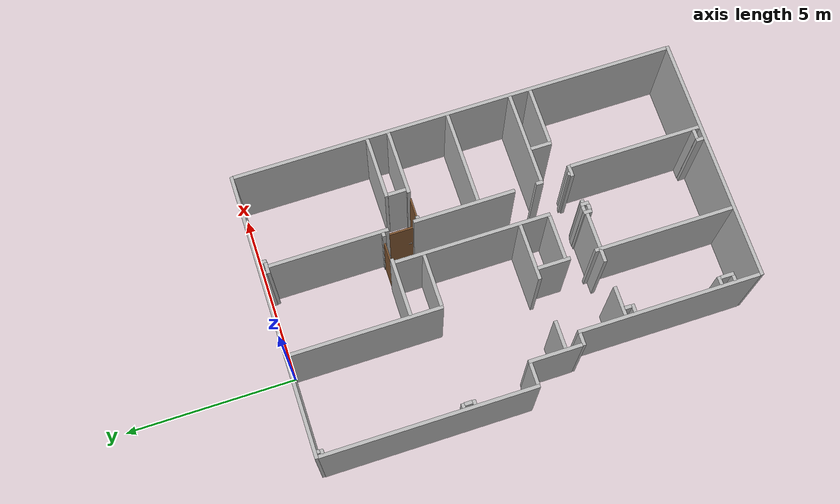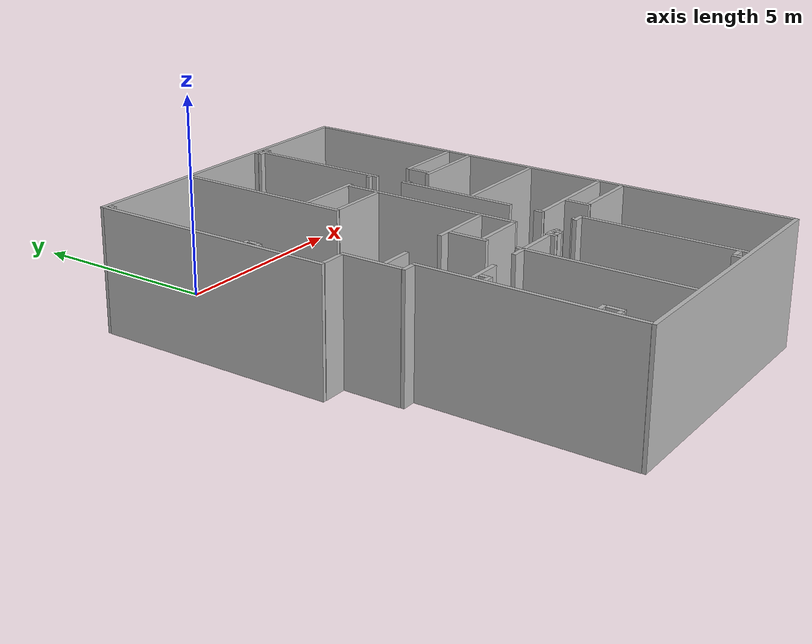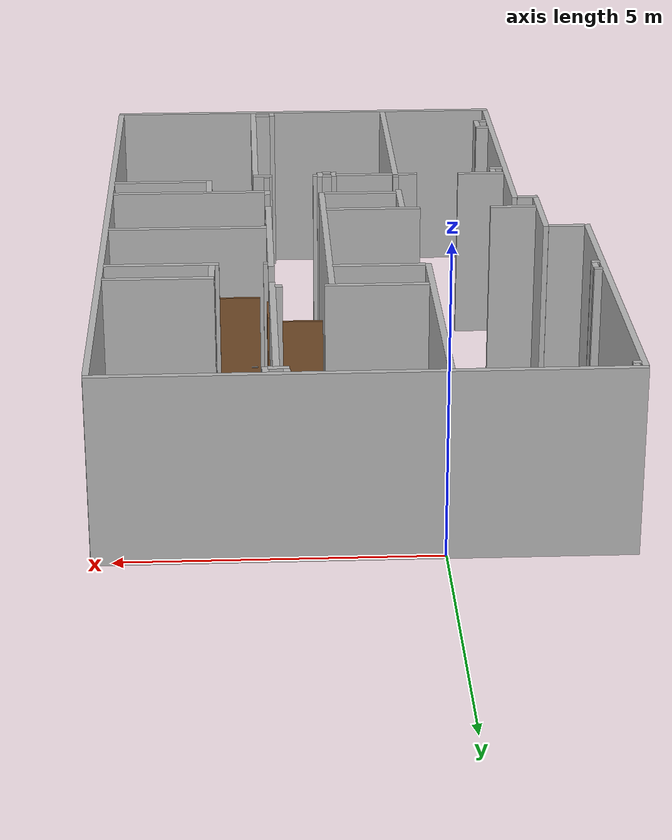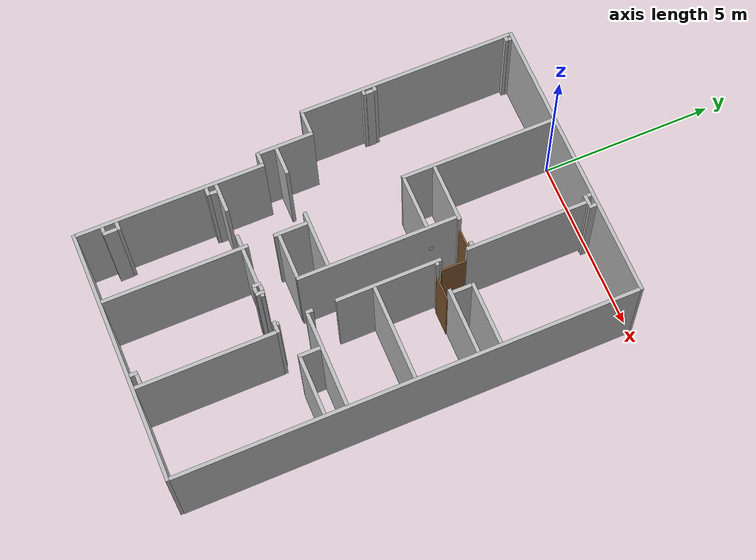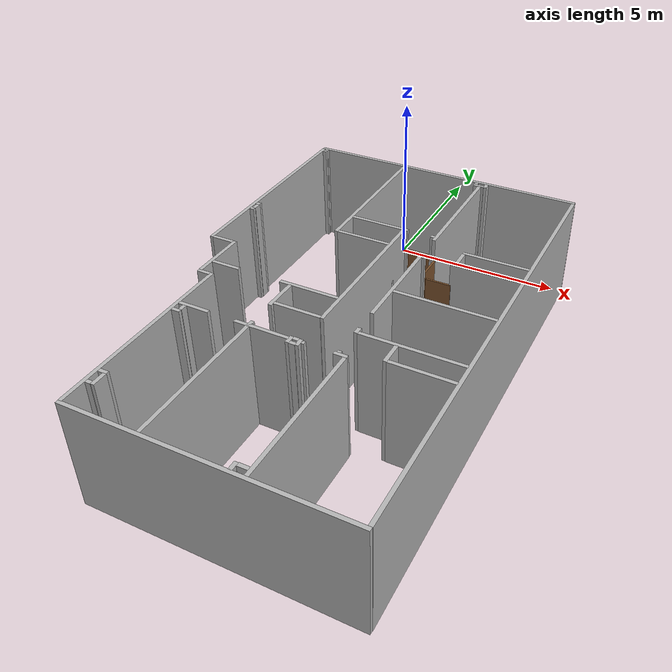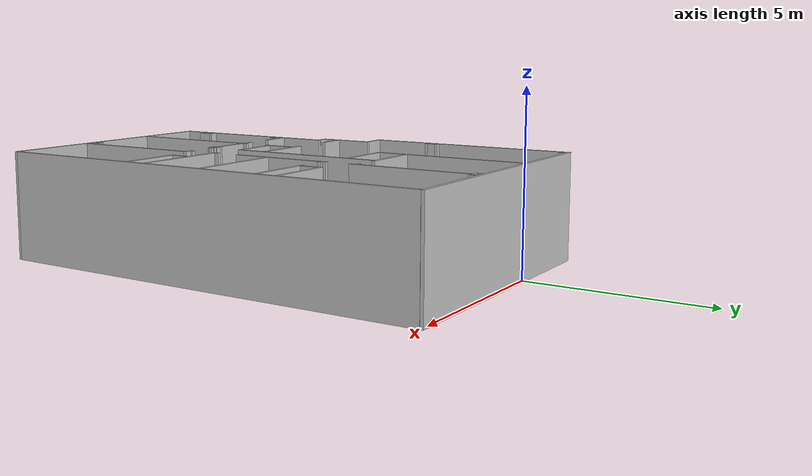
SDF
<sdf version='1.6'>
  <model name='complete_mp_model'>
    <link name='building_footprint'>
      <pose frame=''>0 0 0 0 -0 0</pose>
      <inertial>
        <pose frame=''>1.12721 -5.42171 0.338508 0 -0 0</pose>
        <mass>244</mass>
        <inertia>
          <ixx>1142.81</ixx>
          <ixy>-243.459</ixy>
          <ixz>23.0829</ixz>
          <iyy>742.682</iyy>
          <iyz>104.008</iyz>
          <izz>1644.27</izz>
        </inertia>
      </inertial>
      <collision name='building_footprint_fixed_joint_lump__Wall_0_Collision_collision'>
        <pose frame=''>-0.032085 -2.20086 1.524 0 0 -1.5708</pose>
        <geometry>
          <box>
            <size>4.36829 0.1015 3.048</size>
          </box>
        </geometry>
      </collision>
      <collision name='building_footprint_fixed_joint_lump__Wall_10_Collision_collision_1'>
        <pose frame=''>1.73042 -12.8567 1.524 0 -0 3.14159</pose>
        <geometry>
          <box>
            <size>7.155 0.1015 3.048</size>
          </box>
        </geometry>
      </collision>
      <collision name='building_footprint_fixed_joint_lump__Wall_11_Collision_collision_2'>
        <pose frame=''>-2.86708 -3.07444 1.524 0 0 -1.5708</pose>
        <geometry>
          <box>
            <size>6.11546 0.1015 3.048</size>
          </box>
        </geometry>
      </collision>
      <collision name='building_footprint_fixed_joint_lump__Wall_12_Collision_collision_3'>
        <pose frame=''>2.67107 -0.121714 1.524 0 0 -1.5708</pose>
        <geometry>
          <box>
            <size>0.21 0.1015 3.048</size>
          </box>
        </geometry>
      </collision>
      <collision name='building_footprint_fixed_joint_lump__Wall_13_Collision_collision_4'>
        <pose frame=''>-2.02697 -7.61717 1.524 0 -0 3.14159</pose>
        <geometry>
          <box>
            <size>0.36 0.1015 3.048</size>
          </box>
        </geometry>
      </collision>
      <collision name='building_footprint_fixed_joint_lump__Wall_14_Collision_collision_5'>
        <pose frame=''>-2.16697 -6.81467 1.524 0 -0 1.5708</pose>
        <geometry>
          <box>
            <size>1.525 0.1015 3.048</size>
          </box>
        </geometry>
      </collision>
      <collision name='building_footprint_fixed_joint_lump__Wall_15_Collision_collision_6'>
        <pose frame=''>-2.51703 -6.09217 1.524 0 -0 3.14159</pose>
        <geometry>
          <box>
            <size>0.620118 0.1015 3.048</size>
          </box>
        </geometry>
      </collision>
      <collision name='building_footprint_fixed_joint_lump__Wall_16_Collision_collision_7'>
        <pose frame=''>-1.72697 -7.10717 1.524 0 -0 0</pose>
        <geometry>
          <box>
            <size>0.8 0.1015 3.048</size>
          </box>
        </geometry>
      </collision>
      <collision name='building_footprint_fixed_joint_lump__Wall_17_Collision_collision_8'>
        <pose frame=''>0.708089 -7.10814 1.524 0 -0 0</pose>
        <geometry>
          <box>
            <size>1.6314 0.1015 3.048</size>
          </box>
        </geometry>
      </collision>
      <collision name='building_footprint_fixed_joint_lump__Wall_18_Collision_collision_9'>
        <pose frame=''>0.203786 -7.61814 1.524 0 0 -1.5708</pose>
        <geometry>
          <box>
            <size>0.94 0.1015 3.048</size>
          </box>
        </geometry>
      </collision>
      <collision name='building_footprint_fixed_joint_lump__Wall_19_Collision_collision_10'>
        <pose frame=''>0.883786 -7.95418 1.524 0 -0 3.14159</pose>
        <geometry>
          <box>
            <size>1.28 0.1015 3.048</size>
          </box>
        </geometry>
      </collision>
      <collision name='building_footprint_fixed_joint_lump__Wall_1_Collision_collision_11'>
        <pose frame=''>-1.80697 -10.1969 1.524 0 -0 1.5708</pose>
        <geometry>
          <box>
            <size>5.23954 0.1015 3.048</size>
          </box>
        </geometry>
      </collision>
      <collision name='building_footprint_fixed_joint_lump__Wall_20_Collision_collision_12'>
        <pose frame=''>2.51258 -5.82869 1.524 0 0 -1.5708</pose>
        <geometry>
          <box>
            <size>2.94 0.1015 3.048</size>
          </box>
        </geometry>
      </collision>
      <collision name='building_footprint_fixed_joint_lump__Wall_21_Collision_collision_13'>
        <pose frame=''>3.89025 -6.23869 1.524 0 -0 3.14159</pose>
        <geometry>
          <box>
            <size>2.67534 0.1015 3.048</size>
          </box>
        </geometry>
      </collision>
      <collision name='building_footprint_fixed_joint_lump__Wall_22_Collision_collision_14'>
        <pose frame=''>2.59508 -4.50369 1.524 0 -0 0</pose>
        <geometry>
          <box>
            <size>0.085 0.1015 3.048</size>
          </box>
        </geometry>
      </collision>
      <collision name='building_footprint_fixed_joint_lump__Wall_23_Collision_collision_15'>
        <pose frame=''>4.29108 -4.50455 1.524 0 -0 0</pose>
        <geometry>
          <box>
            <size>1.87367 0.1015 3.048</size>
          </box>
        </geometry>
      </collision>
      <collision name='building_footprint_fixed_joint_lump__Wall_24_Collision_collision_16'>
        <pose frame=''>4.33025 -3.885 1.524 0 -0 3.14159</pose>
        <geometry>
          <box>
            <size>1.79534 0.1015 3.048</size>
          </box>
        </geometry>
      </collision>
      <collision name='building_footprint_fixed_joint_lump__Wall_25_Collision_collision_17'>
        <pose frame=''>3.47258 -4.19478 1.524 0 0 -1.5708</pose>
        <geometry>
          <box>
            <size>0.539551 0.1015 3.048</size>
          </box>
        </geometry>
      </collision>
      <collision name='building_footprint_fixed_joint_lump__Wall_26_Collision_collision_18'>
        <pose frame=''>3.89302 -8.08548 1.524 0 -0 0</pose>
        <geometry>
          <box>
            <size>2.66978 0.1015 3.048</size>
          </box>
        </geometry>
      </collision>
      <collision name='building_footprint_fixed_joint_lump__Wall_27_Collision_collision_19'>
        <pose frame=''>2.51813 -8.02094 1.524 0 0 -1.5708</pose>
        <geometry>
          <box>
            <size>0.209072 0.1015 3.048</size>
          </box>
        </geometry>
      </collision>
      <collision name='building_footprint_fixed_joint_lump__Wall_28_Collision_collision_20'>
        <pose frame=''>3.54313 -8.42798 1.524 0 0 -1.5708</pose>
        <geometry>
          <box>
            <size>0.605 0.1015 3.048</size>
          </box>
        </geometry>
      </collision>
      <collision name='building_footprint_fixed_joint_lump__Wall_29_Collision_collision_21'>
        <pose frame=''>4.40552 -8.69048 1.524 0 -0 0</pose>
        <geometry>
          <box>
            <size>1.64478 0.1015 3.048</size>
          </box>
        </geometry>
      </collision>
      <collision name='building_footprint_fixed_joint_lump__Wall_2_Collision_collision_22'>
        <pose frame=''>0.765851 -4.345 1.524 0 -0 0</pose>
        <geometry>
          <box>
            <size>1.51587 0.1015 3.048</size>
          </box>
        </geometry>
      </collision>
      <collision name='building_footprint_fixed_joint_lump__Wall_30_Collision_collision_23'>
        <pose frame=''>-2.73708 -0.066714 1.524 0 0 -1.5708</pose>
        <geometry>
          <box>
            <size>0.1 0.1015 3.048</size>
          </box>
        </geometry>
      </collision>
      <collision name='building_footprint_fixed_joint_lump__Wall_31_Collision_collision_24'>
        <pose frame=''>-2.76208 -0.156714 1.524 0 -0 3.14159</pose>
        <geometry>
          <box>
            <size>0.13 0.1015 3.048</size>
          </box>
        </geometry>
      </collision>
      <collision name='building_footprint_fixed_joint_lump__Wall_32_Collision_collision_25'>
        <pose frame=''>-2.75708 -4.035 1.524 0 -0 0</pose>
        <geometry>
          <box>
            <size>0.14 0.1015 3.048</size>
          </box>
        </geometry>
      </collision>
      <collision name='building_footprint_fixed_joint_lump__Wall_33_Collision_collision_26'>
        <pose frame=''>-2.75708 -4.345 1.524 0 -0 0</pose>
        <geometry>
          <box>
            <size>0.14 0.1015 3.048</size>
          </box>
        </geometry>
      </collision>
      <collision name='building_footprint_fixed_joint_lump__Wall_34_Collision_collision_27'>
        <pose frame=''>-2.72708 -4.19 1.524 0 -0 1.5708</pose>
        <geometry>
          <box>
            <size>0.23 0.1015 3.048</size>
          </box>
        </geometry>
      </collision>
      <collision name='building_footprint_fixed_joint_lump__Wall_35_Collision_collision_28'>
        <pose frame=''>-1.34697 -8.95048 1.524 0 -0 0</pose>
        <geometry>
          <box>
            <size>0.84 0.1015 3.048</size>
          </box>
        </geometry>
      </collision>
      <collision name='building_footprint_fixed_joint_lump__Wall_36_Collision_collision_29'>
        <pose frame=''>-1.57197 -9.09048 1.524 0 0 -1.5708</pose>
        <geometry>
          <box>
            <size>0.2 0.1015 3.048</size>
          </box>
        </geometry>
      </collision>
      <collision name='building_footprint_fixed_joint_lump__Wall_37_Collision_collision_30'>
        <pose frame=''>-1.64947 -9.23048 1.524 0 -0 3.14159</pose>
        <geometry>
          <box>
            <size>0.235 0.1015 3.048</size>
          </box>
        </geometry>
      </collision>
      <collision name='building_footprint_fixed_joint_lump__Wall_38_Collision_collision_31'>
        <pose frame=''>0.542994 -8.96048 1.524 0 -0 0</pose>
        <geometry>
          <box>
            <size>1.45992 0.1015 3.048</size>
          </box>
        </geometry>
      </collision>
      <collision name='building_footprint_fixed_joint_lump__Wall_39_Collision_collision_32'>
        <pose frame=''>0.201972 -10.8063 1.524 0 0 -1.5708</pose>
        <geometry>
          <box>
            <size>4.02075 0.1015 3.048</size>
          </box>
        </geometry>
      </collision>
      <collision name='building_footprint_fixed_joint_lump__Wall_3_Collision_collision_33'>
        <pose frame=''>1.56379 -5.75418 1.524 0 0 -1.5708</pose>
        <geometry>
          <box>
            <size>4.48 0.1015 3.048</size>
          </box>
        </geometry>
      </collision>
      <collision name='building_footprint_fixed_joint_lump__Wall_40_Collision_collision_34'>
        <pose frame=''>1.31295 -8.99429 1.524 0 0 -1.5708</pose>
        <geometry>
          <box>
            <size>0.24 0.1015 3.048</size>
          </box>
        </geometry>
      </collision>
      <collision name='building_footprint_fixed_joint_lump__Wall_41_Collision_collision_35'>
        <pose frame=''>1.43545 -9.07429 1.524 0 -0 0</pose>
        <geometry>
          <box>
            <size>0.165 0.1015 3.048</size>
          </box>
        </geometry>
      </collision>
      <collision name='building_footprint_fixed_joint_lump__Wall_42_Collision_collision_36'>
        <pose frame=''>1.43545 -8.91429 1.524 0 -0 0</pose>
        <geometry>
          <box>
            <size>0.165 0.1015 3.048</size>
          </box>
        </geometry>
      </collision>
      <collision name='building_footprint_fixed_joint_lump__Wall_43_Collision_collision_37'>
        <pose frame=''>1.55795 -8.99429 1.524 0 -0 1.5708</pose>
        <geometry>
          <box>
            <size>0.24 0.1015 3.048</size>
          </box>
        </geometry>
      </collision>
      <collision name='building_footprint_fixed_joint_lump__Wall_44_Collision_collision_38'>
        <pose frame=''>1.64045 -8.95429 1.524 0 -0 0</pose>
        <geometry>
          <box>
            <size>0.085 0.1015 3.048</size>
          </box>
        </geometry>
      </collision>
      <collision name='building_footprint_fixed_joint_lump__Wall_45_Collision_collision_39'>
        <pose frame=''>2.58795 -8.95429 1.524 0 -0 0</pose>
        <geometry>
          <box>
            <size>0.34 0.1015 3.048</size>
          </box>
        </geometry>
      </collision>
      <collision name='building_footprint_fixed_joint_lump__Wall_46_Collision_collision_40'>
        <pose frame=''>2.51765 -8.87871 1.524 0 0 -1.5708</pose>
        <geometry>
          <box>
            <size>0.071155 0.1015 3.048</size>
          </box>
        </geometry>
      </collision>
      <collision name='building_footprint_fixed_joint_lump__Wall_47_Collision_collision_41'>
        <pose frame=''>2.71765 -10.9055 1.524 0 0 -1.5708</pose>
        <geometry>
          <box>
            <size>3.82243 0.1015 3.048</size>
          </box>
        </geometry>
      </collision>
      <collision name='building_footprint_fixed_joint_lump__Wall_48_Collision_collision_42'>
        <pose frame=''>2.36067 -12.7051 1.524 0 0 -1.5708</pose>
        <geometry>
          <box>
            <size>0.22317 0.1015 3.048</size>
          </box>
        </geometry>
      </collision>
      <collision name='building_footprint_fixed_joint_lump__Wall_49_Collision_collision_43'>
        <pose frame=''>2.53916 -12.6335 1.524 0 -0 0</pose>
        <geometry>
          <box>
            <size>0.276981 0.1015 3.048</size>
          </box>
        </geometry>
      </collision>
      <collision name='building_footprint_fixed_joint_lump__Wall_4_Collision_collision_44'>
        <pose frame=''>2.41107 -3.47418 1.524 0 -0 0</pose>
        <geometry>
          <box>
            <size>0.12 0.1015 3.048</size>
          </box>
        </geometry>
      </collision>
      <collision name='building_footprint_fixed_joint_lump__Wall_50_Collision_collision_45'>
        <pose frame=''>-1.64697 -11.7135 1.524 0 -0 0</pose>
        <geometry>
          <box>
            <size>0.24 0.1015 3.048</size>
          </box>
        </geometry>
      </collision>
      <collision name='building_footprint_fixed_joint_lump__Wall_51_Collision_collision_46'>
        <pose frame=''>-1.56697 -11.9485 1.524 0 0 -1.5708</pose>
        <geometry>
          <box>
            <size>0.39 0.1015 3.048</size>
          </box>
        </geometry>
      </collision>
      <collision name='building_footprint_fixed_joint_lump__Wall_52_Collision_collision_47'>
        <pose frame=''>-1.68697 -12.1035 1.524 0 -0 3.14159</pose>
        <geometry>
          <box>
            <size>0.16 0.1015 3.048</size>
          </box>
        </geometry>
      </collision>
      <collision name='building_footprint_fixed_joint_lump__Wall_54_Collision_collision_48'>
        <pose frame=''>0.844493 -3.47418 1.524 0 -0 0</pose>
        <geometry>
          <box>
            <size>1.67315 0.1015 3.048</size>
          </box>
        </geometry>
      </collision>
      <collision name='building_footprint_fixed_joint_lump__Wall_5_Collision_collision_49'>
        <pose frame=''>2.51107 -1.93921 1.524 0 0 -1.5708</pose>
        <geometry>
          <box>
            <size>3.425 0.1015 3.048</size>
          </box>
        </geometry>
      </collision>
      <collision name='building_footprint_fixed_joint_lump__Wall_6_Collision_collision_50'>
        <pose frame=''>2.47357 -0.186714 1.524 0 -0 3.14159</pose>
        <geometry>
          <box>
            <size>0.315 0.1015 3.048</size>
          </box>
        </geometry>
      </collision>
      <collision name='building_footprint_fixed_joint_lump__Wall_7_Collision_collision_51'>
        <pose frame=''>2.35607 -0.081714 1.524 0 -0 1.5708</pose>
        <geometry>
          <box>
            <size>0.13 0.1015 3.048</size>
          </box>
        </geometry>
      </collision>
      <collision name='building_footprint_fixed_joint_lump__Wall_8_Collision_collision_52'>
        <pose frame=''>1.20042 0.023286 1.524 0 -0 0</pose>
        <geometry>
          <box>
            <size>8.215 0.1015 3.048</size>
          </box>
        </geometry>
      </collision>
      <collision name='building_footprint_fixed_joint_lump__Wall_9_Collision_collision_53'>
        <pose frame=''>5.26792 -6.41671 1.524 0 0 -1.5708</pose>
        <geometry>
          <box>
            <size>12.8 0.1015 3.048</size>
          </box>
        </geometry>
      </collision>
      <visual name='building_footprint_fixed_joint_lump__Wall_0_Visual_visual'>
        <pose frame=''>-0.032085 -2.20086 1.524 0 0 -1.5708</pose>
        <geometry>
          <box>
            <size>4.36829 0.1015 3.048</size>
          </box>
        </geometry>
      </visual>
      <visual name='building_footprint_fixed_joint_lump__Wall_10_Visual_visual_1'>
        <pose frame=''>1.73042 -12.8567 1.524 0 -0 3.14159</pose>
        <geometry>
          <box>
            <size>7.155 0.1015 3.048</size>
          </box>
        </geometry>
      </visual>
      <visual name='building_footprint_fixed_joint_lump__Wall_11_Visual_visual_2'>
        <pose frame=''>-2.86708 -3.07444 1.524 0 0 -1.5708</pose>
        <geometry>
          <box>
            <size>6.11546 0.1015 3.048</size>
          </box>
        </geometry>
      </visual>
      <visual name='building_footprint_fixed_joint_lump__Wall_12_Visual_visual_3'>
        <pose frame=''>2.67107 -0.121714 1.524 0 0 -1.5708</pose>
        <geometry>
          <box>
            <size>0.21 0.1015 3.048</size>
          </box>
        </geometry>
      </visual>
      <visual name='building_footprint_fixed_joint_lump__Wall_13_Visual_visual_4'>
        <pose frame=''>-2.02697 -7.61717 1.524 0 -0 3.14159</pose>
        <geometry>
          <box>
            <size>0.36 0.1015 3.048</size>
          </box>
        </geometry>
      </visual>
      <visual name='building_footprint_fixed_joint_lump__Wall_14_Visual_visual_5'>
        <pose frame=''>-2.16697 -6.81467 1.524 0 -0 1.5708</pose>
        <geometry>
          <box>
            <size>1.525 0.1015 3.048</size>
          </box>
        </geometry>
      </visual>
      <visual name='building_footprint_fixed_joint_lump__Wall_15_Visual_visual_6'>
        <pose frame=''>-2.51703 -6.09217 1.524 0 -0 3.14159</pose>
        <geometry>
          <box>
            <size>0.620118 0.1015 3.048</size>
          </box>
        </geometry>
      </visual>
      <visual name='building_footprint_fixed_joint_lump__Wall_16_Visual_visual_7'>
        <pose frame=''>-1.72697 -7.10717 1.524 0 -0 0</pose>
        <geometry>
          <box>
            <size>0.8 0.1015 3.048</size>
          </box>
        </geometry>
      </visual>
      <visual name='building_footprint_fixed_joint_lump__Wall_17_Visual_visual_8'>
        <pose frame=''>0.708089 -7.10814 1.524 0 -0 0</pose>
        <geometry>
          <box>
            <size>1.6314 0.1015 3.048</size>
          </box>
        </geometry>
      </visual>
      <visual name='building_footprint_fixed_joint_lump__Wall_18_Visual_visual_9'>
        <pose frame=''>0.203786 -7.61814 1.524 0 0 -1.5708</pose>
        <geometry>
          <box>
            <size>0.94 0.1015 3.048</size>
          </box>
        </geometry>
      </visual>
      <visual name='building_footprint_fixed_joint_lump__Wall_19_Visual_visual_10'>
        <pose frame=''>0.883786 -7.95418 1.524 0 -0 3.14159</pose>
        <geometry>
          <box>
            <size>1.28 0.1015 3.048</size>
          </box>
        </geometry>
      </visual>
      <visual name='building_footprint_fixed_joint_lump__Wall_1_Visual_visual_11'>
        <pose frame=''>-1.80697 -10.1969 1.524 0 -0 1.5708</pose>
        <geometry>
          <box>
            <size>5.23954 0.1015 3.048</size>
          </box>
        </geometry>
      </visual>
      <visual name='building_footprint_fixed_joint_lump__Wall_20_Visual_visual_12'>
        <pose frame=''>2.51258 -5.82869 1.524 0 0 -1.5708</pose>
        <geometry>
          <box>
            <size>2.94 0.1015 3.048</size>
          </box>
        </geometry>
      </visual>
      <visual name='building_footprint_fixed_joint_lump__Wall_21_Visual_visual_13'>
        <pose frame=''>3.89025 -6.23869 1.524 0 -0 3.14159</pose>
        <geometry>
          <box>
            <size>2.67534 0.1015 3.048</size>
          </box>
        </geometry>
      </visual>
      <visual name='building_footprint_fixed_joint_lump__Wall_22_Visual_visual_14'>
        <pose frame=''>2.59508 -4.50369 1.524 0 -0 0</pose>
        <geometry>
          <box>
            <size>0.085 0.1015 3.048</size>
          </box>
        </geometry>
      </visual>
      <visual name='building_footprint_fixed_joint_lump__Wall_23_Visual_visual_15'>
        <pose frame=''>4.29108 -4.50455 1.524 0 -0 0</pose>
        <geometry>
          <box>
            <size>1.87367 0.1015 3.048</size>
          </box>
        </geometry>
      </visual>
      <visual name='building_footprint_fixed_joint_lump__Wall_24_Visual_visual_16'>
        <pose frame=''>4.33025 -3.885 1.524 0 -0 3.14159</pose>
        <geometry>
          <box>
            <size>1.79534 0.1015 3.048</size>
          </box>
        </geometry>
      </visual>
      <visual name='building_footprint_fixed_joint_lump__Wall_25_Visual_visual_17'>
        <pose frame=''>3.47258 -4.19478 1.524 0 0 -1.5708</pose>
        <geometry>
          <box>
            <size>0.539551 0.1015 3.048</size>
          </box>
        </geometry>
      </visual>
      <visual name='building_footprint_fixed_joint_lump__Wall_26_Visual_visual_18'>
        <pose frame=''>3.89302 -8.08548 1.524 0 -0 0</pose>
        <geometry>
          <box>
            <size>2.66978 0.1015 3.048</size>
          </box>
        </geometry>
      </visual>
      <visual name='building_footprint_fixed_joint_lump__Wall_27_Visual_visual_19'>
        <pose frame=''>2.51813 -8.02094 1.524 0 0 -1.5708</pose>
        <geometry>
          <box>
            <size>0.209072 0.1015 3.048</size>
          </box>
        </geometry>
      </visual>
      <visual name='building_footprint_fixed_joint_lump__Wall_28_Visual_visual_20'>
        <pose frame=''>3.54313 -8.42798 1.524 0 0 -1.5708</pose>
        <geometry>
          <box>
            <size>0.605 0.1015 3.048</size>
          </box>
        </geometry>
      </visual>
      <visual name='building_footprint_fixed_joint_lump__Wall_29_Visual_visual_21'>
        <pose frame=''>4.40552 -8.69048 1.524 0 -0 0</pose>
        <geometry>
          <box>
            <size>1.64478 0.1015 3.048</size>
          </box>
        </geometry>
      </visual>
      <visual name='building_footprint_fixed_joint_lump__Wall_2_Visual_visual_22'>
        <pose frame=''>0.765851 -4.345 1.524 0 -0 0</pose>
        <geometry>
          <box>
            <size>1.51587 0.1015 3.048</size>
          </box>
        </geometry>
      </visual>
      <visual name='building_footprint_fixed_joint_lump__Wall_30_Visual_visual_23'>
        <pose frame=''>-2.73708 -0.066714 1.524 0 0 -1.5708</pose>
        <geometry>
          <box>
            <size>0.1 0.1015 3.048</size>
          </box>
        </geometry>
      </visual>
      <visual name='building_footprint_fixed_joint_lump__Wall_31_Visual_visual_24'>
        <pose frame=''>-2.76208 -0.156714 1.524 0 -0 3.14159</pose>
        <geometry>
          <box>
            <size>0.13 0.1015 3.048</size>
          </box>
        </geometry>
      </visual>
      <visual name='building_footprint_fixed_joint_lump__Wall_32_Visual_visual_25'>
        <pose frame=''>-2.75708 -4.035 1.524 0 -0 0</pose>
        <geometry>
          <box>
            <size>0.14 0.1015 3.048</size>
          </box>
        </geometry>
      </visual>
      <visual name='building_footprint_fixed_joint_lump__Wall_33_Visual_visual_26'>
        <pose frame=''>-2.75708 -4.345 1.524 0 -0 0</pose>
        <geometry>
          <box>
            <size>0.14 0.1015 3.048</size>
          </box>
        </geometry>
      </visual>
      <visual name='building_footprint_fixed_joint_lump__Wall_34_Visual_visual_27'>
        <pose frame=''>-2.72708 -4.19 1.524 0 -0 1.5708</pose>
        <geometry>
          <box>
            <size>0.23 0.1015 3.048</size>
          </box>
        </geometry>
      </visual>
      <visual name='building_footprint_fixed_joint_lump__Wall_35_Visual_visual_28'>
        <pose frame=''>-1.34697 -8.95048 1.524 0 -0 0</pose>
        <geometry>
          <box>
            <size>0.84 0.1015 3.048</size>
          </box>
        </geometry>
      </visual>
      <visual name='building_footprint_fixed_joint_lump__Wall_36_Visual_visual_29'>
        <pose frame=''>-1.57197 -9.09048 1.524 0 0 -1.5708</pose>
        <geometry>
          <box>
            <size>0.2 0.1015 3.048</size>
          </box>
        </geometry>
      </visual>
      <visual name='building_footprint_fixed_joint_lump__Wall_37_Visual_visual_30'>
        <pose frame=''>-1.64947 -9.23048 1.524 0 -0 3.14159</pose>
        <geometry>
          <box>
            <size>0.235 0.1015 3.048</size>
          </box>
        </geometry>
      </visual>
      <visual name='building_footprint_fixed_joint_lump__Wall_38_Visual_visual_31'>
        <pose frame=''>0.542994 -8.96048 1.524 0 -0 0</pose>
        <geometry>
          <box>
            <size>1.45992 0.1015 3.048</size>
          </box>
        </geometry>
      </visual>
      <visual name='building_footprint_fixed_joint_lump__Wall_39_Visual_visual_32'>
        <pose frame=''>0.201972 -10.8063 1.524 0 0 -1.5708</pose>
        <geometry>
          <box>
            <size>4.02075 0.1015 3.048</size>
          </box>
        </geometry>
      </visual>
      <visual name='building_footprint_fixed_joint_lump__Wall_3_Visual_visual_33'>
        <pose frame=''>1.56379 -5.75418 1.524 0 0 -1.5708</pose>
        <geometry>
          <box>
            <size>4.48 0.1015 3.048</size>
          </box>
        </geometry>
      </visual>
      <visual name='building_footprint_fixed_joint_lump__light_switch_1_faceplate_visual_34'>
        <pose frame=''>1.61479 -4.25418 1.75 0 0 -1.5708</pose>
        <geometry>
          <box>
            <size>0.1 0.001 0.2</size>
          </box>
        </geometry>
      </visual>
      <visual name='building_footprint_fixed_joint_lump__Wall_40_Visual_visual_35'>
        <pose frame=''>1.31295 -8.99429 1.524 0 0 -1.5708</pose>
        <geometry>
          <box>
            <size>0.24 0.1015 3.048</size>
          </box>
        </geometry>
      </visual>
      <visual name='building_footprint_fixed_joint_lump__Wall_41_Visual_visual_36'>
        <pose frame=''>1.43545 -9.07429 1.524 0 -0 0</pose>
        <geometry>
          <box>
            <size>0.165 0.1015 3.048</size>
          </box>
        </geometry>
      </visual>
      <visual name='building_footprint_fixed_joint_lump__Wall_42_Visual_visual_37'>
        <pose frame=''>1.43545 -8.91429 1.524 0 -0 0</pose>
        <geometry>
          <box>
            <size>0.165 0.1015 3.048</size>
          </box>
        </geometry>
      </visual>
      <visual name='building_footprint_fixed_joint_lump__Wall_43_Visual_visual_38'>
        <pose frame=''>1.55795 -8.99429 1.524 0 -0 1.5708</pose>
        <geometry>
          <box>
            <size>0.24 0.1015 3.048</size>
          </box>
        </geometry>
      </visual>
      <visual name='building_footprint_fixed_joint_lump__Wall_44_Visual_visual_39'>
        <pose frame=''>1.64045 -8.95429 1.524 0 -0 0</pose>
        <geometry>
          <box>
            <size>0.085 0.1015 3.048</size>
          </box>
        </geometry>
      </visual>
      <visual name='building_footprint_fixed_joint_lump__Wall_45_Visual_visual_40'>
        <pose frame=''>2.58795 -8.95429 1.524 0 -0 0</pose>
        <geometry>
          <box>
            <size>0.34 0.1015 3.048</size>
          </box>
        </geometry>
      </visual>
      <visual name='building_footprint_fixed_joint_lump__Wall_46_Visual_visual_41'>
        <pose frame=''>2.51765 -8.87871 1.524 0 0 -1.5708</pose>
        <geometry>
          <box>
            <size>0.071155 0.1015 3.048</size>
          </box>
        </geometry>
      </visual>
      <visual name='building_footprint_fixed_joint_lump__Wall_47_Visual_visual_42'>
        <pose frame=''>2.71765 -10.9055 1.524 0 0 -1.5708</pose>
        <geometry>
          <box>
            <size>3.82243 0.1015 3.048</size>
          </box>
        </geometry>
      </visual>
      <visual name='building_footprint_fixed_joint_lump__Wall_48_Visual_visual_43'>
        <pose frame=''>2.36067 -12.7051 1.524 0 0 -1.5708</pose>
        <geometry>
          <box>
            <size>0.22317 0.1015 3.048</size>
          </box>
        </geometry>
      </visual>
      <visual name='building_footprint_fixed_joint_lump__Wall_49_Visual_visual_44'>
        <pose frame=''>2.53916 -12.6335 1.524 0 -0 0</pose>
        <geometry>
          <box>
            <size>0.276981 0.1015 3.048</size>
          </box>
        </geometry>
      </visual>
      <visual name='building_footprint_fixed_joint_lump__Wall_4_Visual_visual_45'>
        <pose frame=''>2.41107 -3.47418 1.524 0 -0 0</pose>
        <geometry>
          <box>
            <size>0.12 0.1015 3.048</size>
          </box>
        </geometry>
      </visual>
      <visual name='building_footprint_fixed_joint_lump__Wall_50_Visual_visual_46'>
        <pose frame=''>-1.64697 -11.7135 1.524 0 -0 0</pose>
        <geometry>
          <box>
            <size>0.24 0.1015 3.048</size>
          </box>
        </geometry>
      </visual>
      <visual name='building_footprint_fixed_joint_lump__Wall_51_Visual_visual_47'>
        <pose frame=''>-1.56697 -11.9485 1.524 0 0 -1.5708</pose>
        <geometry>
          <box>
            <size>0.39 0.1015 3.048</size>
          </box>
        </geometry>
      </visual>
      <visual name='building_footprint_fixed_joint_lump__Wall_52_Visual_visual_48'>
        <pose frame=''>-1.68697 -12.1035 1.524 0 -0 3.14159</pose>
        <geometry>
          <box>
            <size>0.16 0.1015 3.048</size>
          </box>
        </geometry>
      </visual>
      <visual name='building_footprint_fixed_joint_lump__Wall_54_Visual_visual_49'>
        <pose frame=''>0.844493 -3.47418 1.524 0 -0 0</pose>
        <geometry>
          <box>
            <size>1.67315 0.1015 3.048</size>
          </box>
        </geometry>
      </visual>
      <visual name='building_footprint_fixed_joint_lump__Wall_5_Visual_visual_50'>
        <pose frame=''>2.51107 -1.93921 1.524 0 0 -1.5708</pose>
        <geometry>
          <box>
            <size>3.425 0.1015 3.048</size>
          </box>
        </geometry>
      </visual>
      <visual name='building_footprint_fixed_joint_lump__Wall_6_Visual_visual_51'>
        <pose frame=''>2.47357 -0.186714 1.524 0 -0 3.14159</pose>
        <geometry>
          <box>
            <size>0.315 0.1015 3.048</size>
          </box>
        </geometry>
      </visual>
      <visual name='building_footprint_fixed_joint_lump__Wall_7_Visual_visual_52'>
        <pose frame=''>2.35607 -0.081714 1.524 0 -0 1.5708</pose>
        <geometry>
          <box>
            <size>0.13 0.1015 3.048</size>
          </box>
        </geometry>
      </visual>
      <visual name='building_footprint_fixed_joint_lump__Wall_8_Visual_visual_53'>
        <pose frame=''>1.20042 0.023286 1.524 0 -0 0</pose>
        <geometry>
          <box>
            <size>8.215 0.1015 3.048</size>
          </box>
        </geometry>
      </visual>
      <visual name='building_footprint_fixed_joint_lump__Wall_9_Visual_visual_54'>
        <pose frame=''>5.26792 -6.41671 1.524 0 0 -1.5708</pose>
        <geometry>
          <box>
            <size>12.8 0.1015 3.048</size>
          </box>
        </geometry>
      </visual>
    </link>
    <link name='door_1'>
      <pose frame=''>1.71 -3.5 0.01 0 -0 0</pose>
      <inertial>
        <pose frame=''>0 0 0 0 -0 0</pose>
        <mass>30</mass>
        <inertia>
          <ixx>7.7937</ixx>
          <ixy>0</ixy>
          <ixz>0</ixz>
          <iyy>6.1752</iyy>
          <iyz>0</iyz>
          <izz>1.8675</izz>
        </inertia>
      </inertial>
      <collision name='door_1_collision'>
        <pose frame=''>0.35 0.025 1.215 0 -0 0</pose>
        <geometry>
          <box>
            <size>0.7 0.05 2.43</size>
          </box>
        </geometry>
        <surface>
          <contact>
            <ode/>
          </contact>
          <friction>
            <ode>
              <mu>0.2</mu>
              <mu2>0.2</mu2>
            </ode>
          </friction>
        </surface>
      </collision>
      <visual name='door_1_visual'>
        <pose frame=''>0.35 0.025 1.215 0 -0 0</pose>
        <geometry>
          <box>
            <size>0.7 0.05 2.43</size>
          </box>
        </geometry>
        <material>
          <script>
            <name>Gazebo/Brown</name>
            <uri>file://media/materials/scripts/gazebo.material</uri>
          </script>
        </material>
      </visual>
      <gravity>1</gravity>
      <velocity_decay/>
      <self_collide>0</self_collide>
    </link>
    <joint name='door_1_joint' type='revolute'>
      <child>door_1</child>
      <parent>building_footprint</parent>
      <axis>
        <xyz>0 0 1</xyz>
        <limit>
          <lower>0</lower>
          <upper>1.5708</upper>
          <effort>1000</effort>
          <velocity>10</velocity>
        </limit>
        <dynamics>
          <damping>0.7</damping>
          <friction>0</friction>
          <spring_reference>0</spring_reference>
          <spring_stiffness>0</spring_stiffness>
        </dynamics>
        <use_parent_model_frame>1</use_parent_model_frame>
      </axis>
    </joint>
    <link name='door_1_handle_base'>
      <pose frame=''>2.335 -3.475 1.225 0 -0 0</pose>
      <inertial>
        <pose frame=''>0 0 1 0 -0 0</pose>
        <mass>1</mass>
        <inertia>
          <ixx>1</ixx>
          <ixy>0</ixy>
          <ixz>0</ixz>
          <iyy>1</iyy>
          <iyz>0</iyz>
          <izz>1</izz>
        </inertia>
      </inertial>
      <collision name='door_1_handle_base_collision'>
        <pose frame=''>0 0 0 1.5708 -0 0</pose>
        <geometry>
          <cylinder>
            <length>0.104</length>
            <radius>0.008</radius>
          </cylinder>
        </geometry>
      </collision>
      <collision name='door_1_handle_base_fixed_joint_lump__door_1_handle_1_collision_1'>
        <pose frame=''>-0.025 0.052 0 3.14159 1.57079 3.14159</pose>
        <geometry>
          <cylinder>
            <length>0.1</length>
            <radius>0.008</radius>
          </cylinder>
        </geometry>
      </collision>
      <collision name='door_1_handle_base_fixed_joint_lump__door_1_handle_2_collision_2'>
        <pose frame=''>-0.025 -0.052 0 3.14159 1.57079 3.14159</pose>
        <geometry>
          <cylinder>
            <length>0.1</length>
            <radius>0.008</radius>
          </cylinder>
        </geometry>
      </collision>
      <visual name='door_1_handle_base_visual'>
        <pose frame=''>0 0 0 1.5708 -0 0</pose>
        <geometry>
          <cylinder>
            <length>0.104</length>
            <radius>0.008</radius>
          </cylinder>
        </geometry>
      </visual>
      <visual name='door_1_handle_base_fixed_joint_lump__door_1_handle_1_visual_1'>
        <pose frame=''>-0.025 0.052 0 3.14159 1.57079 3.14159</pose>
        <geometry>
          <cylinder>
            <length>0.1</length>
            <radius>0.008</radius>
          </cylinder>
        </geometry>
      </visual>
      <visual name='door_1_handle_base_fixed_joint_lump__door_1_handle_2_visual_2'>
        <pose frame=''>-0.025 -0.052 0 3.14159 1.57079 3.14159</pose>
        <geometry>
          <cylinder>
            <length>0.1</length>
            <radius>0.008</radius>
          </cylinder>
        </geometry>
      </visual>
    </link>
    <joint name='door_1_handle_joint' type='revolute'>
      <child>door_1_handle_base</child>
      <parent>door_1</parent>
      <axis>
        <xyz>0 1 0</xyz>
        <limit>
          <lower>-1.5708</lower>
          <upper>1.5708</upper>
          <effort>1</effort>
          <velocity>1</velocity>
        </limit>
        <dynamics>
          <spring_reference>0</spring_reference>
          <spring_stiffness>0</spring_stiffness>
        </dynamics>
        <use_parent_model_frame>1</use_parent_model_frame>
      </axis>
      <physics>
        <ode>
          <limit>
            <cfm>0</cfm>
            <erp>0.2</erp>
          </limit>
        </ode>
      </physics>
    </joint>
    <link name='door_2'>
      <pose frame=''>2.54 -3.67 0 0 -0 -1.5708</pose>
      <inertial>
        <pose frame=''>0 0 0 0 -0 0</pose>
        <mass>30</mass>
        <inertia>
          <ixx>7.7937</ixx>
          <ixy>0</ixy>
          <ixz>0</ixz>
          <iyy>6.1752</iyy>
          <iyz>0</iyz>
          <izz>1.8675</izz>
        </inertia>
      </inertial>
      <collision name='door_2_collision'>
        <pose frame=''>0.35 0.025 1.215 0 -0 0</pose>
        <geometry>
          <box>
            <size>0.7 0.05 2.43</size>
          </box>
        </geometry>
        <surface>
          <contact>
            <ode/>
          </contact>
          <friction>
            <ode>
              <mu>0.2</mu>
              <mu2>0.2</mu2>
            </ode>
          </friction>
        </surface>
      </collision>
      <visual name='door_2_visual'>
        <pose frame=''>0.35 0.025 1.215 0 -0 0</pose>
        <geometry>
          <box>
            <size>0.7 0.05 2.43</size>
          </box>
        </geometry>
        <material>
          <script>
            <name>Gazebo/Brown</name>
            <uri>file://media/materials/scripts/gazebo.material</uri>
          </script>
        </material>
      </visual>
      <gravity>1</gravity>
      <velocity_decay/>
      <self_collide>0</self_collide>
    </link>
    <joint name='door_2_joint' type='revolute'>
      <child>door_2</child>
      <parent>building_footprint</parent>
      <axis>
        <xyz>0 0 1</xyz>
        <limit>
          <lower>0</lower>
          <upper>1.5708</upper>
          <effort>1000</effort>
          <velocity>10</velocity>
        </limit>
        <dynamics>
          <damping>0.7</damping>
          <friction>0</friction>
          <spring_reference>0</spring_reference>
          <spring_stiffness>0</spring_stiffness>
        </dynamics>
        <use_parent_model_frame>1</use_parent_model_frame>
      </axis>
    </joint>
    <link name='door_2_handle_base'>
      <pose frame=''>2.565 -4.295 1.215 0 -0 -1.5708</pose>
      <inertial>
        <pose frame=''>0 0 1 0 -0 0</pose>
        <mass>1</mass>
        <inertia>
          <ixx>1</ixx>
          <ixy>0</ixy>
          <ixz>0</ixz>
          <iyy>1</iyy>
          <iyz>0</iyz>
          <izz>1</izz>
        </inertia>
      </inertial>
      <collision name='door_2_handle_base_collision'>
        <pose frame=''>0 0 0 1.5708 -0 0</pose>
        <geometry>
          <cylinder>
            <length>0.104</length>
            <radius>0.008</radius>
          </cylinder>
        </geometry>
      </collision>
      <collision name='door_2_handle_base_fixed_joint_lump__door_2_handle_1_collision_1'>
        <pose frame=''>-0.025 0.052 0 3.14159 1.57079 3.14159</pose>
        <geometry>
          <cylinder>
            <length>0.1</length>
            <radius>0.008</radius>
          </cylinder>
        </geometry>
      </collision>
      <collision name='door_2_handle_base_fixed_joint_lump__door_2_handle_2_collision_2'>
        <pose frame=''>-0.025 -0.052 0 3.14159 1.57079 3.14159</pose>
        <geometry>
          <cylinder>
            <length>0.1</length>
            <radius>0.008</radius>
          </cylinder>
        </geometry>
      </collision>
      <visual name='door_2_handle_base_visual'>
        <pose frame=''>0 0 0 1.5708 -0 0</pose>
        <geometry>
          <cylinder>
            <length>0.104</length>
            <radius>0.008</radius>
          </cylinder>
        </geometry>
      </visual>
      <visual name='door_2_handle_base_fixed_joint_lump__door_2_handle_1_visual_1'>
        <pose frame=''>-0.025 0.052 0 3.14159 1.57079 3.14159</pose>
        <geometry>
          <cylinder>
            <length>0.1</length>
            <radius>0.008</radius>
          </cylinder>
        </geometry>
      </visual>
      <visual name='door_2_handle_base_fixed_joint_lump__door_2_handle_2_visual_2'>
        <pose frame=''>-0.025 -0.052 0 3.14159 1.57079 3.14159</pose>
        <geometry>
          <cylinder>
            <length>0.1</length>
            <radius>0.008</radius>
          </cylinder>
        </geometry>
      </visual>
    </link>
    <joint name='door_2_handle_joint' type='revolute'>
      <child>door_2_handle_base</child>
      <parent>door_2</parent>
      <axis>
        <xyz>1 -0 0</xyz>
        <limit>
          <lower>-1.5708</lower>
          <upper>1.5708</upper>
          <effort>1</effort>
          <velocity>1</velocity>
        </limit>
        <dynamics>
          <spring_reference>0</spring_reference>
          <spring_stiffness>0</spring_stiffness>
        </dynamics>
        <use_parent_model_frame>1</use_parent_model_frame>
      </axis>
      <physics>
        <ode>
          <limit>
            <cfm>0</cfm>
            <erp>0.2</erp>
          </limit>
        </ode>
      </physics>
    </joint>
    <link name='door_3'>
      <pose frame=''>3.4 -4.53 0 0 -0 -3.14159</pose>
      <inertial>
        <pose frame=''>0 0 0 0 -0 0</pose>
        <mass>30</mass>
        <inertia>
          <ixx>7.7937</ixx>
          <ixy>0</ixy>
          <ixz>0</ixz>
          <iyy>6.1752</iyy>
          <iyz>0</iyz>
          <izz>1.8675</izz>
        </inertia>
      </inertial>
      <collision name='door_3_collision'>
        <pose frame=''>0.35 0.025 1.215 0 -0 0</pose>
        <geometry>
          <box>
            <size>0.7 0.05 2.43</size>
          </box>
        </geometry>
        <surface>
          <contact>
            <ode/>
          </contact>
          <friction>
            <ode>
              <mu>0.2</mu>
              <mu2>0.2</mu2>
            </ode>
          </friction>
        </surface>
      </collision>
      <visual name='door_3_visual'>
        <pose frame=''>0.35 0.025 1.215 0 -0 0</pose>
        <geometry>
          <box>
            <size>0.7 0.05 2.43</size>
          </box>
        </geometry>
        <material>
          <script>
            <name>Gazebo/Brown</name>
            <uri>file://media/materials/scripts/gazebo.material</uri>
          </script>
        </material>
      </visual>
      <gravity>1</gravity>
      <velocity_decay/>
      <self_collide>0</self_collide>
    </link>
    <joint name='door_3_joint' type='revolute'>
      <child>door_3</child>
      <parent>building_footprint</parent>
      <axis>
        <xyz>0 0 1</xyz>
        <limit>
          <lower>0</lower>
          <upper>1.5708</upper>
          <effort>1000</effort>
          <velocity>10</velocity>
        </limit>
        <dynamics>
          <damping>0.7</damping>
          <friction>0</friction>
          <spring_reference>0</spring_reference>
          <spring_stiffness>0</spring_stiffness>
        </dynamics>
        <use_parent_model_frame>1</use_parent_model_frame>
      </axis>
    </joint>
    <link name='door_3_handle_base'>
      <pose frame=''>2.775 -4.555 1.215 0 -0 -3.14159</pose>
      <inertial>
        <pose frame=''>0 0 1 0 -0 0</pose>
        <mass>1</mass>
        <inertia>
          <ixx>1</ixx>
          <ixy>0</ixy>
          <ixz>0</ixz>
          <iyy>1</iyy>
          <iyz>0</iyz>
          <izz>1</izz>
        </inertia>
      </inertial>
      <collision name='door_3_handle_base_collision'>
        <pose frame=''>0 0 0 1.5708 -0 0</pose>
        <geometry>
          <cylinder>
            <length>0.104</length>
            <radius>0.008</radius>
          </cylinder>
        </geometry>
      </collision>
      <collision name='door_3_handle_base_fixed_joint_lump__door_3_handle_1_collision_1'>
        <pose frame=''>-0.025 0.052 0 3.14159 1.57079 3.14159</pose>
        <geometry>
          <cylinder>
            <length>0.1</length>
            <radius>0.008</radius>
          </cylinder>
        </geometry>
      </collision>
      <collision name='door_3_handle_base_fixed_joint_lump__door_3_handle_2_collision_2'>
        <pose frame=''>-0.025 -0.052 0 3.14159 1.57079 3.14159</pose>
        <geometry>
          <cylinder>
            <length>0.1</length>
            <radius>0.008</radius>
          </cylinder>
        </geometry>
      </collision>
      <visual name='door_3_handle_base_visual'>
        <pose frame=''>0 0 0 1.5708 -0 0</pose>
        <geometry>
          <cylinder>
            <length>0.104</length>
            <radius>0.008</radius>
          </cylinder>
        </geometry>
      </visual>
      <visual name='door_3_handle_base_fixed_joint_lump__door_3_handle_1_visual_1'>
        <pose frame=''>-0.025 0.052 0 3.14159 1.57079 3.14159</pose>
        <geometry>
          <cylinder>
            <length>0.1</length>
            <radius>0.008</radius>
          </cylinder>
        </geometry>
      </visual>
      <visual name='door_3_handle_base_fixed_joint_lump__door_3_handle_2_visual_2'>
        <pose frame=''>-0.025 -0.052 0 3.14159 1.57079 3.14159</pose>
        <geometry>
          <cylinder>
            <length>0.1</length>
            <radius>0.008</radius>
          </cylinder>
        </geometry>
      </visual>
    </link>
    <joint name='door_3_handle_joint' type='revolute'>
      <child>door_3_handle_base</child>
      <parent>door_3</parent>
      <axis>
        <xyz>0 -1 0</xyz>
        <limit>
          <lower>-1.5708</lower>
          <upper>1.5708</upper>
          <effort>1</effort>
          <velocity>1</velocity>
        </limit>
        <dynamics>
          <spring_reference>0</spring_reference>
          <spring_stiffness>0</spring_stiffness>
        </dynamics>
        <use_parent_model_frame>1</use_parent_model_frame>
      </axis>
      <physics>
        <ode>
          <limit>
            <cfm>0</cfm>
            <erp>0.2</erp>
          </limit>
        </ode>
      </physics>
    </joint>
    <static>0</static>
  </model>
</sdf>
